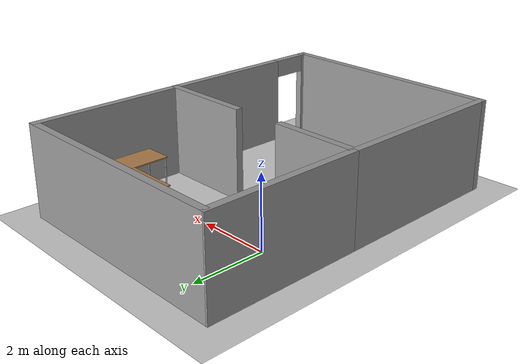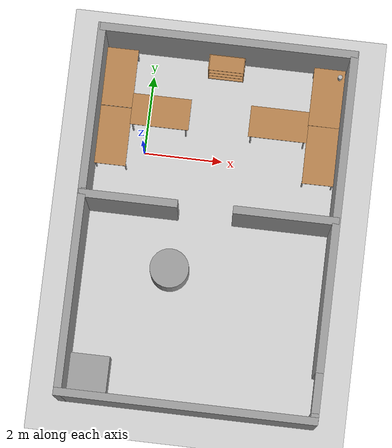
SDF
<sdf version="1.4">
 <world name="default">
  <light name="sun" type="directional">
   <pose>0 0 10 0 -0 0</pose>
   <diffuse>0.8 0.8 0.8 1</diffuse>
   <specular>0.2 0.2 0.2 1</specular>
   <attenuation>
    <range>1000</range>
    <constant>0.9</constant>
    <linear>0.01</linear>
    <quadratic>0.001</quadratic>
   </attenuation>
   <direction>-0.5 0.1 -0.9</direction>
  </light>
  <model name="ground_plane">
   <static>1</static>
   <link name="link">
    <collision name="collision">
     <geometry><plane><normal>0 0 1</normal><size>100 100</size></plane></geometry>
     <surface><friction><ode><mu>100</mu><mu2>50</mu2></ode></friction></surface>
    </collision>
    <visual name="visual">
     <cast_shadows>0</cast_shadows>
     <geometry><plane><normal>0 0 1</normal><size>100 100</size></plane></geometry>
     <material>
      <script><uri>file://media/materials/scripts/gazebo.material</uri><name>Gazebo/Grey</name></script>
     </material>
    </visual>
    <velocity_decay><linear>0</linear><angular>0</angular></velocity_decay>
   </link>
  </model>
  <physics type="ode">
   <max_step_size>0.001</max_step_size>
   <real_time_factor>1</real_time_factor>
   <real_time_update_rate>1000</real_time_update_rate>
   <gravity>0 0 -9.8</gravity>
  </physics>
  <scene><ambient>0.4 0.4 0.4 1</ambient><background>0.7 0.7 0.7 1</background><shadows>1</shadows></scene>
  <spherical_coordinates>
   <surface_model>EARTH_WGS84</surface_model>
   <latitude_deg>0</latitude_deg>
   <longitude_deg>0</longitude_deg>
   <elevation>0</elevation>
   <heading_deg>0</heading_deg>
  </spherical_coordinates>
  <model name="upo.world">
   <link name="Wall_23">
    <pose>4.01723 -0.266341 0 0 -0 1.5708</pose>
    <visual name="Wall_23_Visual_0">
     <pose>-4.54348 0 1.25 0 -0 0</pose>
     <geometry><box><size>0.177799 0.2 2.5</size></box></geometry>
     <material>
      <script><uri>file://media/materials/scripts/gazebo.material</uri><name>Gazebo/Grey</name></script>
     </material>
    </visual>
    <collision name="Wall_23_Collision_0">
     <geometry><box><size>0.177799 0.2 2.5</size></box></geometry>
     <pose>-4.54348 0 1.25 0 -0 0</pose>
    </collision>
    <visual name="Wall_23_Visual_1">
     <pose>0.5889 0 1.25 0 -0 0</pose>
     <geometry><box><size>8.08695 0.2 2.5</size></box></geometry>
     <material>
      <script><uri>file://media/materials/scripts/gazebo.material</uri><name>Gazebo/Grey</name></script>
     </material>
    </visual>
    <collision name="Wall_23_Collision_1">
     <geometry><box><size>8.08695 0.2 2.5</size></box></geometry>
     <pose>0.5889 0 1.25 0 -0 0</pose>
    </collision>
    <visual name="Wall_23_Visual_2">
     <pose>-3.95458 0 2.25 0 -0 0</pose>
     <geometry><box><size>1 0.2 0.5</size></box></geometry>
     <material>
      <script><uri>file://media/materials/scripts/gazebo.material</uri><name>Gazebo/Grey</name></script>
     </material>
    </visual>
    <collision name="Wall_23_Collision_2">
     <geometry><box><size>1 0.2 0.5</size></box></geometry>
     <pose>-3.95458 0 2.25 0 -0 0</pose>
    </collision>
    <velocity_decay><linear>0</linear><angular>0</angular></velocity_decay>
   </link>
   <link name="Wall_27">
    <collision name="Wall_27_Collision">
     <geometry><box><size>2.64758 0.2 2.5</size></box></geometry>
     <pose>0 0 1.25 0 -0 0</pose>
    </collision>
    <visual name="Wall_27_Visual">
     <pose>0 0 1.25 0 -0 0</pose>
     <geometry><box><size>2.64758 0.2 2.5</size></box></geometry>
     <material>
      <script><uri>file://media/materials/scripts/gazebo.material</uri><name>Gazebo/Grey</name></script>
     </material>
    </visual>
    <velocity_decay><linear>0</linear><angular>0</angular></velocity_decay>
    <pose>2.76286 0.061184 0 0 -0 3.14159</pose>
   </link>
   <link name="Wall_31">
    <collision name="Wall_31_Collision">
     <geometry><box><size>6.55071 0.2 2.5</size></box></geometry>
     <pose>0 0 1.25 0 -0 0</pose>
    </collision>
    <visual name="Wall_31_Visual">
     <pose>0 0 1.25 0 -0 0</pose>
     <geometry><box><size>6.55071 0.2 2.5</size></box></geometry>
     <material>
      <script><uri>file://media/materials/scripts/gazebo.material</uri><name>Gazebo/Grey</name></script>
     </material>
    </visual>
    <velocity_decay><linear>0</linear><angular>0</angular></velocity_decay>
    <pose>0.836109 -4.91271 0 0 -0 3.14159</pose>
   </link>
   <link name="Wall_32">
    <collision name="Wall_32_Collision">
     <geometry><box><size>5.18636 0.2 2.5</size></box></geometry>
     <pose>0 0 1.25 0 -0 0</pose>
    </collision>
    <visual name="Wall_32_Visual">
     <pose>0 0 1.25 0 -0 0</pose>
     <geometry><box><size>5.18636 0.2 2.5</size></box></geometry>
     <material>
      <script><uri>file://media/materials/scripts/gazebo.material</uri><name>Gazebo/Grey</name></script>
     </material>
    </visual>
    <velocity_decay><linear>0</linear><angular>0</angular></velocity_decay>
    <pose>-2.33925 -2.41953 0 0 -0 1.5708</pose>
   </link>
   <link name="Wall_40">
    <collision name="Wall_40_Collision">
     <geometry><box><size>2.48229 0.2 2.5</size></box></geometry>
     <pose>0 0 1.25 0 -0 0</pose>
    </collision>
    <visual name="Wall_40_Visual">
     <pose>0 0 1.25 0 -0 0</pose>
     <geometry><box><size>2.48229 0.2 2.5</size></box></geometry>
     <material>
      <script><uri>file://media/materials/scripts/gazebo.material</uri><name>Gazebo/Grey</name></script>
     </material>
    </visual>
    <velocity_decay><linear>0</linear><angular>0</angular></velocity_decay>
    <pose>-1.18284 0.044501 0 0 -0 0</pose>
   </link>
   <link name="Wall_43">
    <collision name="Wall_43_Collision">
     <geometry><box><size>4.35525 0.2 2.5</size></box></geometry>
     <pose>0 0 1.25 0 -0 0</pose>
    </collision>
    <visual name="Wall_43_Visual">
     <pose>0 0 1.25 0 -0 0</pose>
     <geometry><box><size>4.35525 0.2 2.5</size></box></geometry>
     <material>
      <script><uri>file://media/materials/scripts/gazebo.material</uri><name>Gazebo/Grey</name></script>
     </material>
    </visual>
    <velocity_decay><linear>0</linear><angular>0</angular></velocity_decay>
    <pose>-2.33991 2.20081 0 0 -0 1.5708</pose>
   </link>
   <link name="Wall_45">
    <collision name="Wall_45_Collision">
     <geometry><box><size>6.4887 0.2 2.5</size></box></geometry>
     <pose>0 0 1.25 0 -0 0</pose>
    </collision>
    <visual name="Wall_45_Visual">
     <pose>0 0 1.25 0 -0 0</pose>
     <geometry><box><size>6.4887 0.2 2.5</size></box></geometry>
     <material>
      <script><uri>file://media/materials/scripts/gazebo.material</uri><name>Gazebo/Grey</name></script>
     </material>
    </visual>
    <velocity_decay><linear>0</linear><angular>0</angular></velocity_decay>
    <pose>0.85405 4.27844 0 0 -0 3.14159</pose>
   </link>
   <static>1</static>
   <pose>1 -1.5863 0 0 -0 0</pose>
  </model>
  <model name="table">
   <static>1</static>
   <link name="link">
    <collision name="surface">
     <pose>0 0 1 0 -0 0</pose>
     <geometry><box><size>1.5 0.8 0.03</size></box></geometry>
     <surface><friction><ode><mu>0.6</mu><mu2>0.6</mu2></ode></friction></surface>
    </collision>
    <visual name="visual1">
     <pose>0 0 1 0 -0 0</pose>
     <geometry><box><size>1.5 0.8 0.03</size></box></geometry>
     <material>
      <script><uri>file://media/materials/scripts/gazebo.material</uri><name>Gazebo/Wood</name></script>
     </material>
    </visual>
    <collision name="front_left_leg">
     <pose>0.68 0.38 0.5 0 -0 0</pose>
     <geometry><cylinder><radius>0.02</radius><length>1</length></cylinder></geometry>
    </collision>
    <visual name="front_left_leg">
     <pose>0.68 0.38 0.5 0 -0 0</pose>
     <geometry><cylinder><radius>0.02</radius><length>1</length></cylinder></geometry>
     <material>
      <script><uri>file://media/materials/scripts/gazebo.material</uri><name>Gazebo/Grey</name></script>
     </material>
    </visual>
    <collision name="front_right_leg">
     <pose>0.68 -0.38 0.5 0 -0 0</pose>
     <geometry><cylinder><radius>0.02</radius><length>1</length></cylinder></geometry>
    </collision>
    <visual name="front_right_leg">
     <pose>0.68 -0.38 0.5 0 -0 0</pose>
     <geometry><cylinder><radius>0.02</radius><length>1</length></cylinder></geometry>
     <material>
      <script><uri>file://media/materials/scripts/gazebo.material</uri><name>Gazebo/Grey</name></script>
     </material>
    </visual>
    <collision name="back_right_leg">
     <pose>-0.68 -0.38 0.5 0 -0 0</pose>
     <geometry><cylinder><radius>0.02</radius><length>1</length></cylinder></geometry>
    </collision>
    <visual name="back_right_leg">
     <pose>-0.68 -0.38 0.5 0 -0 0</pose>
     <geometry><cylinder><radius>0.02</radius><length>1</length></cylinder></geometry>
     <material>
      <script><uri>file://media/materials/scripts/gazebo.material</uri><name>Gazebo/Grey</name></script>
     </material>
    </visual>
    <collision name="back_left_leg">
     <pose>-0.68 0.38 0.5 0 -0 0</pose>
     <geometry><cylinder><radius>0.02</radius><length>1</length></cylinder></geometry>
    </collision>
    <visual name="back_left_leg">
     <pose>-0.68 0.38 0.5 0 -0 0</pose>
     <geometry><cylinder><radius>0.02</radius><length>1</length></cylinder></geometry>
     <material>
      <script><uri>file://media/materials/scripts/gazebo.material</uri><name>Gazebo/Grey</name></script>
     </material>
    </visual>
    <velocity_decay><linear>0</linear><angular>0</angular></velocity_decay>
   </link>
   <pose>-0.822981 1.72131 0 0 -0 1.5745</pose>
  </model>
  <model name="table_0">
   <static>1</static>
   <link name="link">
    <collision name="surface">
     <pose>0 0 1 0 -0 0</pose>
     <geometry><box><size>1.5 0.8 0.03</size></box></geometry>
     <surface><friction><ode><mu>0.6</mu><mu2>0.6</mu2></ode></friction></surface>
    </collision>
    <visual name="visual1">
     <pose>0 0 1 0 -0 0</pose>
     <geometry><box><size>1.5 0.8 0.03</size></box></geometry>
     <material>
      <script><uri>file://media/materials/scripts/gazebo.material</uri><name>Gazebo/Wood</name></script>
     </material>
    </visual>
    <collision name="front_left_leg">
     <pose>0.68 0.38 0.5 0 -0 0</pose>
     <geometry><cylinder><radius>0.02</radius><length>1</length></cylinder></geometry>
    </collision>
    <visual name="front_left_leg">
     <pose>0.68 0.38 0.5 0 -0 0</pose>
     <geometry><cylinder><radius>0.02</radius><length>1</length></cylinder></geometry>
     <material>
      <script><uri>file://media/materials/scripts/gazebo.material</uri><name>Gazebo/Grey</name></script>
     </material>
    </visual>
    <collision name="front_right_leg">
     <pose>0.68 -0.38 0.5 0 -0 0</pose>
     <geometry><cylinder><radius>0.02</radius><length>1</length></cylinder></geometry>
    </collision>
    <visual name="front_right_leg">
     <pose>0.68 -0.38 0.5 0 -0 0</pose>
     <geometry><cylinder><radius>0.02</radius><length>1</length></cylinder></geometry>
     <material>
      <script><uri>file://media/materials/scripts/gazebo.material</uri><name>Gazebo/Grey</name></script>
     </material>
    </visual>
    <collision name="back_right_leg">
     <pose>-0.68 -0.38 0.5 0 -0 0</pose>
     <geometry><cylinder><radius>0.02</radius><length>1</length></cylinder></geometry>
    </collision>
    <visual name="back_right_leg">
     <pose>-0.68 -0.38 0.5 0 -0 0</pose>
     <geometry><cylinder><radius>0.02</radius><length>1</length></cylinder></geometry>
     <material>
      <script><uri>file://media/materials/scripts/gazebo.material</uri><name>Gazebo/Grey</name></script>
     </material>
    </visual>
    <collision name="back_left_leg">
     <pose>-0.68 0.38 0.5 0 -0 0</pose>
     <geometry><cylinder><radius>0.02</radius><length>1</length></cylinder></geometry>
    </collision>
    <visual name="back_left_leg">
     <pose>-0.68 0.38 0.5 0 -0 0</pose>
     <geometry><cylinder><radius>0.02</radius><length>1</length></cylinder></geometry>
     <material>
      <script><uri>file://media/materials/scripts/gazebo.material</uri><name>Gazebo/Grey</name></script>
     </material>
    </visual>
    <velocity_decay><linear>0</linear><angular>0</angular></velocity_decay>
   </link>
   <pose>-0.817184 0.212433 0 0 0 -1.56636</pose>
  </model>
  <model name="table_1">
   <static>1</static>
   <link name="link">
    <collision name="surface">
     <pose>0 0 1 0 -0 0</pose>
     <geometry><box><size>1.5 0.8 0.03</size></box></geometry>
     <surface><friction><ode><mu>0.6</mu><mu2>0.6</mu2></ode></friction></surface>
    </collision>
    <visual name="visual1">
     <pose>0 0 1 0 -0 0</pose>
     <geometry><box><size>1.5 0.8 0.03</size></box></geometry>
     <material>
      <script><uri>file://media/materials/scripts/gazebo.material</uri><name>Gazebo/Wood</name></script>
     </material>
    </visual>
    <collision name="front_left_leg">
     <pose>0.68 0.38 0.5 0 -0 0</pose>
     <geometry><cylinder><radius>0.02</radius><length>1</length></cylinder></geometry>
    </collision>
    <visual name="front_left_leg">
     <pose>0.68 0.38 0.5 0 -0 0</pose>
     <geometry><cylinder><radius>0.02</radius><length>1</length></cylinder></geometry>
     <material>
      <script><uri>file://media/materials/scripts/gazebo.material</uri><name>Gazebo/Grey</name></script>
     </material>
    </visual>
    <collision name="front_right_leg">
     <pose>0.68 -0.38 0.5 0 -0 0</pose>
     <geometry><cylinder><radius>0.02</radius><length>1</length></cylinder></geometry>
    </collision>
    <visual name="front_right_leg">
     <pose>0.68 -0.38 0.5 0 -0 0</pose>
     <geometry><cylinder><radius>0.02</radius><length>1</length></cylinder></geometry>
     <material>
      <script><uri>file://media/materials/scripts/gazebo.material</uri><name>Gazebo/Grey</name></script>
     </material>
    </visual>
    <collision name="back_right_leg">
     <pose>-0.68 -0.38 0.5 0 -0 0</pose>
     <geometry><cylinder><radius>0.02</radius><length>1</length></cylinder></geometry>
    </collision>
    <visual name="back_right_leg">
     <pose>-0.68 -0.38 0.5 0 -0 0</pose>
     <geometry><cylinder><radius>0.02</radius><length>1</length></cylinder></geometry>
     <material>
      <script><uri>file://media/materials/scripts/gazebo.material</uri><name>Gazebo/Grey</name></script>
     </material>
    </visual>
    <collision name="back_left_leg">
     <pose>-0.68 0.38 0.5 0 -0 0</pose>
     <geometry><cylinder><radius>0.02</radius><length>1</length></cylinder></geometry>
    </collision>
    <visual name="back_left_leg">
     <pose>-0.68 0.38 0.5 0 -0 0</pose>
     <geometry><cylinder><radius>0.02</radius><length>1</length></cylinder></geometry>
     <material>
      <script><uri>file://media/materials/scripts/gazebo.material</uri><name>Gazebo/Grey</name></script>
     </material>
    </visual>
    <velocity_decay><linear>0</linear><angular>0</angular></velocity_decay>
   </link>
   <pose>0.316779 0.957156 0 0 -0 0</pose>
  </model>
  <model name="table_3">
   <static>1</static>
   <link name="link">
    <collision name="surface">
     <pose>0 0 1 0 -0 0</pose>
     <geometry><box><size>1.5 0.8 0.03</size></box></geometry>
     <surface><friction><ode><mu>0.6</mu><mu2>0.6</mu2></ode></friction></surface>
    </collision>
    <visual name="visual1">
     <pose>0 0 1 0 -0 0</pose>
     <geometry><box><size>1.5 0.8 0.03</size></box></geometry>
     <material>
      <script><uri>file://media/materials/scripts/gazebo.material</uri><name>Gazebo/Wood</name></script>
     </material>
    </visual>
    <collision name="front_left_leg">
     <pose>0.68 0.38 0.5 0 -0 0</pose>
     <geometry><cylinder><radius>0.02</radius><length>1</length></cylinder></geometry>
    </collision>
    <visual name="front_left_leg">
     <pose>0.68 0.38 0.5 0 -0 0</pose>
     <geometry><cylinder><radius>0.02</radius><length>1</length></cylinder></geometry>
     <material>
      <script><uri>file://media/materials/scripts/gazebo.material</uri><name>Gazebo/Grey</name></script>
     </material>
    </visual>
    <collision name="front_right_leg">
     <pose>0.68 -0.38 0.5 0 -0 0</pose>
     <geometry><cylinder><radius>0.02</radius><length>1</length></cylinder></geometry>
    </collision>
    <visual name="front_right_leg">
     <pose>0.68 -0.38 0.5 0 -0 0</pose>
     <geometry><cylinder><radius>0.02</radius><length>1</length></cylinder></geometry>
     <material>
      <script><uri>file://media/materials/scripts/gazebo.material</uri><name>Gazebo/Grey</name></script>
     </material>
    </visual>
    <collision name="back_right_leg">
     <pose>-0.68 -0.38 0.5 0 -0 0</pose>
     <geometry><cylinder><radius>0.02</radius><length>1</length></cylinder></geometry>
    </collision>
    <visual name="back_right_leg">
     <pose>-0.68 -0.38 0.5 0 -0 0</pose>
     <geometry><cylinder><radius>0.02</radius><length>1</length></cylinder></geometry>
     <material>
      <script><uri>file://media/materials/scripts/gazebo.material</uri><name>Gazebo/Grey</name></script>
     </material>
    </visual>
    <collision name="back_left_leg">
     <pose>-0.68 0.38 0.5 0 -0 0</pose>
     <geometry><cylinder><radius>0.02</radius><length>1</length></cylinder></geometry>
    </collision>
    <visual name="back_left_leg">
     <pose>-0.68 0.38 0.5 0 -0 0</pose>
     <geometry><cylinder><radius>0.02</radius><length>1</length></cylinder></geometry>
     <material>
      <script><uri>file://media/materials/scripts/gazebo.material</uri><name>Gazebo/Grey</name></script>
     </material>
    </visual>
    <velocity_decay><linear>0</linear><angular>0</angular></velocity_decay>
   </link>
   <pose>4.48331 1.79387 0 0 0 -1.57269</pose>
  </model>
  <model name="table_4">
   <static>1</static>
   <link name="link">
    <collision name="surface">
     <pose>0 0 1 0 -0 0</pose>
     <geometry><box><size>1.5 0.8 0.03</size></box></geometry>
     <surface><friction><ode><mu>0.6</mu><mu2>0.6</mu2></ode></friction></surface>
    </collision>
    <visual name="visual1">
     <pose>0 0 1 0 -0 0</pose>
     <geometry><box><size>1.5 0.8 0.03</size></box></geometry>
     <material>
      <script><uri>file://media/materials/scripts/gazebo.material</uri><name>Gazebo/Wood</name></script>
     </material>
    </visual>
    <collision name="front_left_leg">
     <pose>0.68 0.38 0.5 0 -0 0</pose>
     <geometry><cylinder><radius>0.02</radius><length>1</length></cylinder></geometry>
    </collision>
    <visual name="front_left_leg">
     <pose>0.68 0.38 0.5 0 -0 0</pose>
     <geometry><cylinder><radius>0.02</radius><length>1</length></cylinder></geometry>
     <material>
      <script><uri>file://media/materials/scripts/gazebo.material</uri><name>Gazebo/Grey</name></script>
     </material>
    </visual>
    <collision name="front_right_leg">
     <pose>0.68 -0.38 0.5 0 -0 0</pose>
     <geometry><cylinder><radius>0.02</radius><length>1</length></cylinder></geometry>
    </collision>
    <visual name="front_right_leg">
     <pose>0.68 -0.38 0.5 0 -0 0</pose>
     <geometry><cylinder><radius>0.02</radius><length>1</length></cylinder></geometry>
     <material>
      <script><uri>file://media/materials/scripts/gazebo.material</uri><name>Gazebo/Grey</name></script>
     </material>
    </visual>
    <collision name="back_right_leg">
     <pose>-0.68 -0.38 0.5 0 -0 0</pose>
     <geometry><cylinder><radius>0.02</radius><length>1</length></cylinder></geometry>
    </collision>
    <visual name="back_right_leg">
     <pose>-0.68 -0.38 0.5 0 -0 0</pose>
     <geometry><cylinder><radius>0.02</radius><length>1</length></cylinder></geometry>
     <material>
      <script><uri>file://media/materials/scripts/gazebo.material</uri><name>Gazebo/Grey</name></script>
     </material>
    </visual>
    <collision name="back_left_leg">
     <pose>-0.68 0.38 0.5 0 -0 0</pose>
     <geometry><cylinder><radius>0.02</radius><length>1</length></cylinder></geometry>
    </collision>
    <visual name="back_left_leg">
     <pose>-0.68 0.38 0.5 0 -0 0</pose>
     <geometry><cylinder><radius>0.02</radius><length>1</length></cylinder></geometry>
     <material>
      <script><uri>file://media/materials/scripts/gazebo.material</uri><name>Gazebo/Grey</name></script>
     </material>
    </visual>
    <velocity_decay><linear>0</linear><angular>0</angular></velocity_decay>
   </link>
   <pose>4.4848 0.292341 0 0 -0 1.57838</pose>
  </model>
  <model name="table_5">
   <static>1</static>
   <link name="link">
    <collision name="surface">
     <pose>0 0 1 0 -0 0</pose>
     <geometry><box><size>1.5 0.8 0.03</size></box></geometry>
     <surface><friction><ode><mu>0.6</mu><mu2>0.6</mu2></ode></friction></surface>
    </collision>
    <visual name="visual1">
     <pose>0 0 1 0 -0 0</pose>
     <geometry><box><size>1.5 0.8 0.03</size></box></geometry>
     <material>
      <script><uri>file://media/materials/scripts/gazebo.material</uri><name>Gazebo/Wood</name></script>
     </material>
    </visual>
    <collision name="front_left_leg">
     <pose>0.68 0.38 0.5 0 -0 0</pose>
     <geometry><cylinder><radius>0.02</radius><length>1</length></cylinder></geometry>
    </collision>
    <visual name="front_left_leg">
     <pose>0.68 0.38 0.5 0 -0 0</pose>
     <geometry><cylinder><radius>0.02</radius><length>1</length></cylinder></geometry>
     <material>
      <script><uri>file://media/materials/scripts/gazebo.material</uri><name>Gazebo/Grey</name></script>
     </material>
    </visual>
    <collision name="front_right_leg">
     <pose>0.68 -0.38 0.5 0 -0 0</pose>
     <geometry><cylinder><radius>0.02</radius><length>1</length></cylinder></geometry>
    </collision>
    <visual name="front_right_leg">
     <pose>0.68 -0.38 0.5 0 -0 0</pose>
     <geometry><cylinder><radius>0.02</radius><length>1</length></cylinder></geometry>
     <material>
      <script><uri>file://media/materials/scripts/gazebo.material</uri><name>Gazebo/Grey</name></script>
     </material>
    </visual>
    <collision name="back_right_leg">
     <pose>-0.68 -0.38 0.5 0 -0 0</pose>
     <geometry><cylinder><radius>0.02</radius><length>1</length></cylinder></geometry>
    </collision>
    <visual name="back_right_leg">
     <pose>-0.68 -0.38 0.5 0 -0 0</pose>
     <geometry><cylinder><radius>0.02</radius><length>1</length></cylinder></geometry>
     <material>
      <script><uri>file://media/materials/scripts/gazebo.material</uri><name>Gazebo/Grey</name></script>
     </material>
    </visual>
    <collision name="back_left_leg">
     <pose>-0.68 0.38 0.5 0 -0 0</pose>
     <geometry><cylinder><radius>0.02</radius><length>1</length></cylinder></geometry>
    </collision>
    <visual name="back_left_leg">
     <pose>-0.68 0.38 0.5 0 -0 0</pose>
     <geometry><cylinder><radius>0.02</radius><length>1</length></cylinder></geometry>
     <material>
      <script><uri>file://media/materials/scripts/gazebo.material</uri><name>Gazebo/Grey</name></script>
     </material>
    </visual>
    <velocity_decay><linear>0</linear><angular>0</angular></velocity_decay>
   </link>
   <pose>3.34289 0.981669 0 0 -0 0</pose>
  </model>
  <model name="beer">
   <link name="link">
    <pose>0 0 0.115 0 -0 0</pose>
    <inertial>
     <mass>0.39</mass>
     <inertia><ixx>0.00058</ixx><ixy>0</ixy><ixz>0</ixz><iyy>0.00058</iyy><iyz>0</iyz><izz>0.00019</izz></inertia>
    </inertial>
    <collision name="collision">
     <geometry><cylinder><radius>0.055</radius><length>0.23</length></cylinder></geometry>
    </collision>
    <visual name="visual">
     <geometry><cylinder><radius>0.055</radius><length>0.23</length></cylinder></geometry>
     <material>
      <script>
       <uri>model://beer/materials/scripts</uri>
       <uri>model://beer/materials/textures</uri>
       <name>Beer/Diffuse</name>
      </script>
     </material>
    </visual>
    <velocity_decay><linear>0</linear><angular>0</angular></velocity_decay>
   </link>
   <pose>4.75591 2.3329 1.015 4e-06 3.7e-05 0.001023</pose>
   <static>0</static>
  </model>
  <model name="bookshelf">
   <static>1</static>
   <link name="link">
    <inertial><mass>1</mass></inertial>
    <collision name="back">
     <pose>0 0.005 0.6 0 -0 0</pose>
     <geometry><box><size>0.9 0.01 1.2</size></box></geometry>
    </collision>
    <visual name="visual1">
     <pose>0 0.005 0.6 0 -0 0</pose>
     <geometry><box><size>0.9 0.01 1.2</size></box></geometry>
     <material>
      <script><uri>file://media/materials/scripts/gazebo.material</uri><name>Gazebo/Wood</name></script>
     </material>
    </visual>
    <collision name="left_side">
     <pose>0.45 -0.195 0.6 0 -0 0</pose>
     <geometry><box><size>0.02 0.4 1.2</size></box></geometry>
    </collision>
    <visual name="visual2">
     <pose>0.45 -0.195 0.6 0 -0 0</pose>
     <geometry><box><size>0.02 0.4 1.2</size></box></geometry>
     <material>
      <script><uri>file://media/materials/scripts/gazebo.material</uri><name>Gazebo/Wood</name></script>
     </material>
    </visual>
    <collision name="right_side">
     <pose>-0.45 -0.195 0.6 0 -0 0</pose>
     <geometry><box><size>0.02 0.4 1.2</size></box></geometry>
    </collision>
    <visual name="visual3">
     <pose>-0.45 -0.195 0.6 0 -0 0</pose>
     <geometry><box><size>0.02 0.4 1.2</size></box></geometry>
     <material>
      <script><uri>file://media/materials/scripts/gazebo.material</uri><name>Gazebo/Wood</name></script>
     </material>
    </visual>
    <collision name="bottom">
     <pose>0 -0.195 0.03 0 -0 0</pose>
     <geometry><box><size>0.88 0.4 0.06</size></box></geometry>
    </collision>
    <visual name="visual4">
     <pose>0 -0.195 0.03 0 -0 0</pose>
     <geometry><box><size>0.88 0.4 0.06</size></box></geometry>
     <material>
      <script><uri>file://media/materials/scripts/gazebo.material</uri><name>Gazebo/Wood</name></script>
     </material>
    </visual>
    <collision name="top">
     <pose>0 -0.195 1.19 0 -0 0</pose>
     <geometry><box><size>0.88 0.4 0.02</size></box></geometry>
    </collision>
    <visual name="visual5">
     <pose>0 -0.195 1.19 0 -0 0</pose>
     <geometry><box><size>0.88 0.4 0.02</size></box></geometry>
     <material>
      <script><uri>file://media/materials/scripts/gazebo.material</uri><name>Gazebo/Wood</name></script>
     </material>
    </visual>
    <collision name="low_shelf">
     <pose>0 -0.195 0.43 0 -0 0</pose>
     <geometry><box><size>0.88 0.4 0.02</size></box></geometry>
    </collision>
    <visual name="visual6">
     <pose>0 -0.195 0.43 0 -0 0</pose>
     <geometry><box><size>0.88 0.4 0.02</size></box></geometry>
     <material>
      <script><uri>file://media/materials/scripts/gazebo.material</uri><name>Gazebo/Wood</name></script>
     </material>
    </visual>
    <collision name="high_shelf">
     <pose>0 -0.195 0.8 0 -0 0</pose>
     <geometry><box><size>0.88 0.4 0.02</size></box></geometry>
    </collision>
    <visual name="visual7">
     <pose>0 -0.195 0.8 0 -0 0</pose>
     <geometry><box><size>0.88 0.4 0.02</size></box></geometry>
     <material>
      <script><uri>file://media/materials/scripts/gazebo.material</uri><name>Gazebo/Wood</name></script>
     </material>
    </visual>
    <velocity_decay><linear>0</linear><angular>0</angular></velocity_decay>
   </link>
   <pose>1.84994 2.54001 0 0 -0 0</pose>
  </model>
  <model name="unit_box_1">
   <pose>-0.716151 -5.89711 0.5 0 -0 0</pose>
   <link name="link">
    <inertial>
     <mass>1</mass>
     <inertia><ixx>1</ixx><ixy>0</ixy><ixz>0</ixz><iyy>1</iyy><iyz>0</iyz><izz>1</izz></inertia>
    </inertial>
    <collision name="collision"><geometry><box><size>1 1 1</size></box></geometry></collision>
    <visual name="visual">
     <geometry><box><size>1 1 1</size></box></geometry>
     <material>
      <script><uri>file://media/materials/scripts/gazebo.material</uri><name>Gazebo/Grey</name></script>
     </material>
    </visual>
    <velocity_decay><linear>0</linear><angular>0</angular></velocity_decay>
   </link>
   <static>0</static>
  </model>
  <model name="unit_cylinder_1">
   <pose>1 -3 0.499992 0 -0 0</pose>
   <link name="link">
    <inertial>
     <mass>1</mass>
     <inertia><ixx>1</ixx><ixy>0</ixy><ixz>0</ixz><iyy>1</iyy><iyz>0</iyz><izz>1</izz></inertia>
    </inertial>
    <collision name="collision">
     <geometry><cylinder><radius>0.5</radius><length>1</length></cylinder></geometry>
    </collision>
    <visual name="visual">
     <geometry><cylinder><radius>0.5</radius><length>1</length></cylinder></geometry>
     <material>
      <script><uri>file://media/materials/scripts/gazebo.material</uri><name>Gazebo/Grey</name></script>
     </material>
    </visual>
    <velocity_decay><linear>0</linear><angular>0</angular></velocity_decay>
   </link>
   <static>0</static>
  </model>
 </world>
</sdf>
